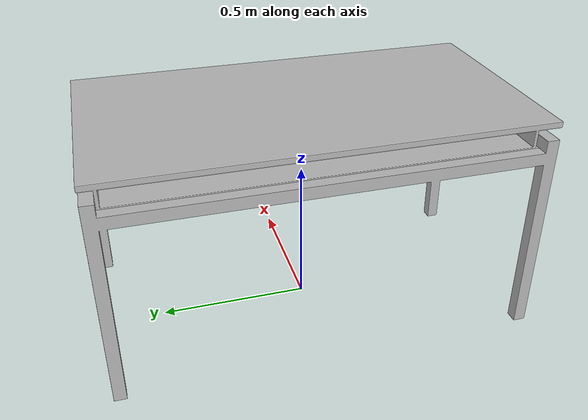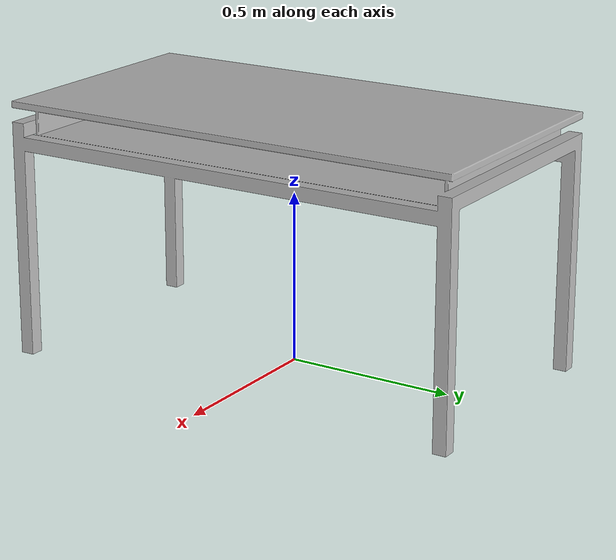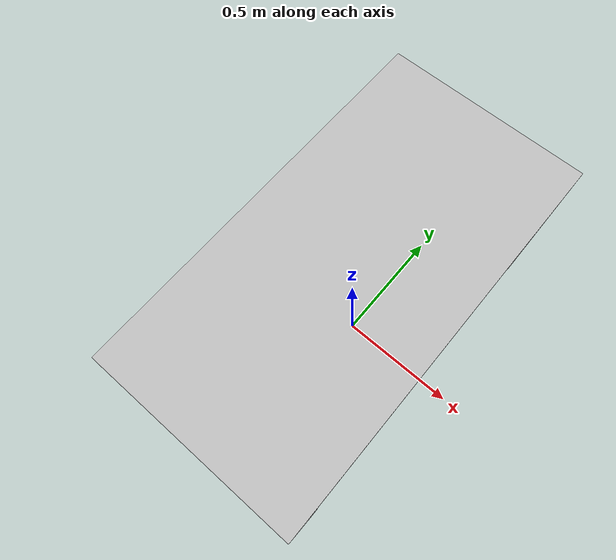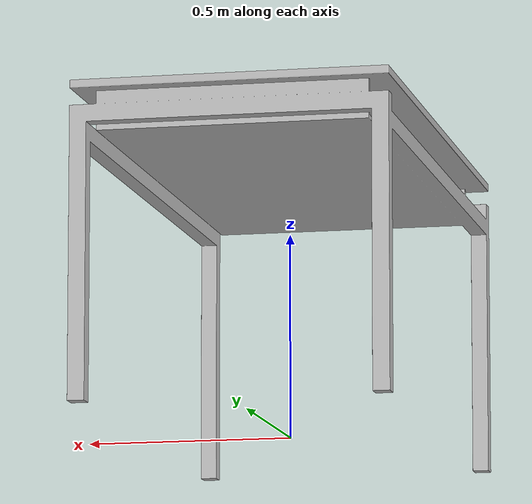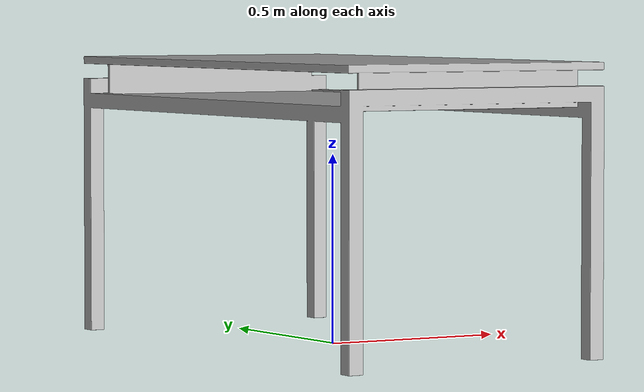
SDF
<?xml version='1.0'?>
<sdf version='1.4'>
  <model name='506'>
    <pose>0 0 0 0 0 0</pose>
    <static>true</static>
    <link name='link'>
      <collision name='collision'>
        <pose>0 0 0 0 0 0</pose>
        <geometry>
          <box>
            <size>0.75 1.40043 2</size>
          </box>
        </geometry>
      </collision>
      <visual name='visual'>
        <pose>0 0 0 0 0 0</pose>
        <geometry>
          <mesh><uri>model://506/506.dae</uri></mesh>
        </geometry>
      </visual>
    </link>
  </model>
</sdf>
